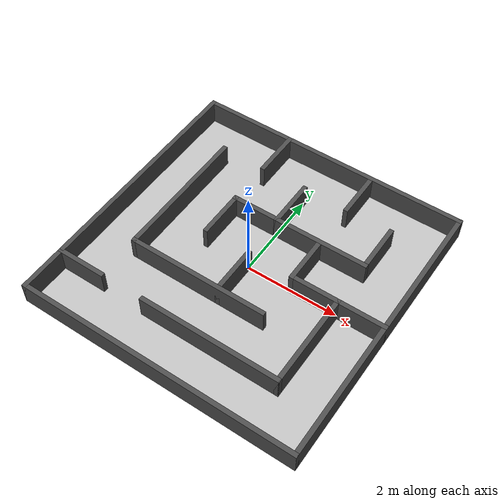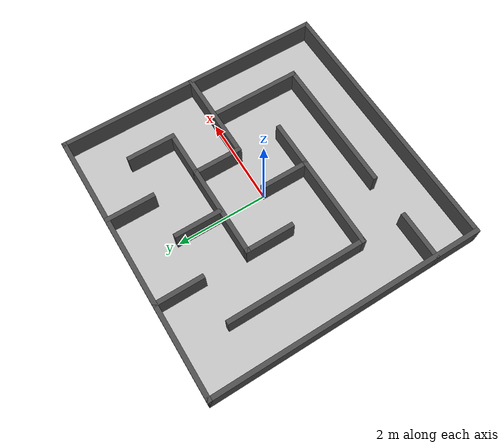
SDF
<?xml version='1.0' encoding='UTF-8'?>
<sdf version="1.6">
  <world name="robot_maze">

    <!-- ================= PHYSICS ================= -->
    <physics name="default_physics" type="ignored">
      <max_step_size>0.001</max_step_size>
      <real_time_factor>1.0</real_time_factor>
    </physics>

    <!-- ================= GAZEBO SYSTEMS ================= -->
    <plugin filename="gz-sim-physics-system" name="gz::sim::systems::Physics"/>

    <plugin filename="gz-sim-user-commands-system" name="gz::sim::systems::UserCommands"/>

    <plugin filename="gz-sim-scene-broadcaster-system" name="gz::sim::systems::SceneBroadcaster"/>

    <plugin filename="gz-sim-sensors-system" name="gz::sim::systems::Sensors">
       <render_engine>ogre2</render_engine>
    </plugin>

    <!-- ================= LIGHTING ================= -->
    <light name="sun" type="directional">
      <pose>0 0 5 0 0 0</pose>
      <cast_shadows>true</cast_shadows>
      <diffuse>0.8 0.8 0.8 1</diffuse>
      <specular>0.2 0.2 0.2 1</specular>
      <direction>-0.5 0.1 -0.9</direction>
    </light>

    <!-- ================= GROUND PLANE ================= -->
    <!-- Centered maze spans x=-3..3 and y=-3..3 -->
    <model name="ground_plane">
      <static>true</static>
      <pose>0 0 -0.05 0 0 0</pose>

      <link name="link">
        <collision name="collision">
          <geometry>
            <box>
              <size>6 6 0.1</size>
            </box>
          </geometry>
        </collision>

        <visual name="visual">
          <geometry>
            <box>
              <size>6 6 0.1</size>
            </box>
          </geometry>
          <material>
            <ambient>0.75 0.75 0.75 1</ambient>
            <diffuse>0.75 0.75 0.75 1</diffuse>
          </material>
        </visual>
      </link>
    </model>

    <!-- ================= MAZE WALLS ================= -->
    <model name="maze">
      <static>true</static>
      <!-- Center the original 0..15 m wall coordinates on the world origin -->
      <pose>-3 -3 0 0 0 0</pose>

      <!-- All walls: height 0.5 m, thickness 0.25 m (scaled proportionally) -->

      <!-- OUTER TOP WALL -->
      <link name="outer_top">
        <pose>3 6 0.25 0 0 0</pose>
        <collision name="collision">
          <geometry>
            <box><size>6.1 0.1 0.5</size></box>
          </geometry>
        </collision>
        <visual name="visual">
          <geometry>
            <box><size>6.1 0.1 0.5</size></box>
          </geometry>
          <material>
            <ambient>0.2 0.2 0.2 1</ambient>
            <diffuse>0.3 0.3 0.3 1</diffuse>
          </material>
        </visual>
      </link>

      <!-- OUTER BOTTOM WALL -->
      <link name="outer_bottom">
        <pose>3 0 0.25 0 0 0</pose>
        <collision name="collision">
          <geometry>
            <box><size>6.1 0.1 0.5</size></box>
          </geometry>
        </collision>
        <visual name="visual">
          <geometry>
            <box><size>6.1 0.1 0.5</size></box>
          </geometry>
          <material>
            <ambient>0.2 0.2 0.2 1</ambient>
            <diffuse>0.3 0.3 0.3 1</diffuse>
          </material>
        </visual>
      </link>

      <!-- OUTER LEFT WALL -->
      <link name="outer_left">
        <pose>0 3 0.25 0 0 0</pose>
        <collision name="collision">
          <geometry>
            <box><size>0.1 6.1 0.5</size></box>
          </geometry>
        </collision>
        <visual name="visual">
          <geometry>
            <box><size>0.1 6.1 0.5</size></box>
          </geometry>
          <material>
            <ambient>0.2 0.2 0.2 1</ambient>
            <diffuse>0.3 0.3 0.3 1</diffuse>
          </material>
        </visual>
      </link>

      <!-- OUTER RIGHT WALL -->
      <link name="outer_right">
        <pose>6 3 0.25 0 0 0</pose>
        <collision name="collision">
          <geometry>
            <box><size>0.1 6.1 0.5</size></box>
          </geometry>
        </collision>
        <visual name="visual">
          <geometry>
            <box><size>0.1 6.1 0.5</size></box>
          </geometry>
          <material>
            <ambient>0.2 0.2 0.2 1</ambient>
            <diffuse>0.3 0.3 0.3 1</diffuse>
          </material>
        </visual>
      </link>

      <!-- ========== INTERIOR VERTICAL WALLS ========== -->

      <link name="v1">
        <pose>2 5.5 0.25 0 0 0</pose>
        <collision name="collision">
          <geometry><box><size>0.1 1.1 0.5</size></box></geometry>
        </collision>
        <visual name="visual">
          <geometry><box><size>0.1 1.1 0.5</size></box></geometry>
          <material><ambient>0.2 0.2 0.2 1</ambient><diffuse>0.3 0.3 0.3 1</diffuse></material>
        </visual>
      </link>

      <link name="v2">
        <pose>4 5.5 0.25 0 0 0</pose>
        <collision name="collision">
          <geometry><box><size>0.1 1.1 0.5</size></box></geometry>
        </collision>
        <visual name="visual">
          <geometry><box><size>0.1 1.1 0.5</size></box></geometry>
          <material><ambient>0.2 0.2 0.2 1</ambient><diffuse>0.3 0.3 0.3 1</diffuse></material>
        </visual>
      </link>

      <link name="v3">
        <pose>1 3.5 0.25 0 0 0</pose>
        <collision name="collision">
          <geometry><box><size>0.1 3.1 0.5</size></box></geometry>
        </collision>
        <visual name="visual">
          <geometry><box><size>0.1 3.1 0.5</size></box></geometry>
          <material><ambient>0.2 0.2 0.2 1</ambient><diffuse>0.3 0.3 0.3 1</diffuse></material>
        </visual>
      </link>

      <link name="v4">
        <pose>3 4.5 0.25 0 0 0</pose>
        <collision name="collision">
          <geometry><box><size>0.1 1.1 0.5</size></box></geometry>
        </collision>
        <visual name="visual">
          <geometry><box><size>0.1 1.1 0.5</size></box></geometry>
          <material><ambient>0.2 0.2 0.2 1</ambient><diffuse>0.3 0.3 0.3 1</diffuse></material>
        </visual>
      </link>

      <link name="v5">
        <pose>5 4.5 0.25 0 0 0</pose>
        <collision name="collision">
          <geometry><box><size>0.1 1.1 0.5</size></box></geometry>
        </collision>
        <visual name="visual">
          <geometry><box><size>0.1 1.1 0.5</size></box></geometry>
          <material><ambient>0.2 0.2 0.2 1</ambient><diffuse>0.3 0.3 0.3 1</diffuse></material>
        </visual>
      </link>

      <link name="v6">
        <pose>2 3.5 0.25 0 0 0</pose>
        <collision name="collision">
          <geometry><box><size>0.1 1.1 0.5</size></box></geometry>
        </collision>
        <visual name="visual">
          <geometry><box><size>0.1 1.1 0.5</size></box></geometry>
          <material><ambient>0.2 0.2 0.2 1</ambient><diffuse>0.3 0.3 0.3 1</diffuse></material>
        </visual>
      </link>

      <link name="v7">
        <pose>4 3.5 0.25 0 0 0</pose>
        <collision name="collision">
          <geometry><box><size>0.1 1.1 0.5</size></box></geometry>
        </collision>
        <visual name="visual">
          <geometry><box><size>0.1 1.1 0.5</size></box></geometry>
          <material><ambient>0.2 0.2 0.2 1</ambient><diffuse>0.3 0.3 0.3 1</diffuse></material>
        </visual>
      </link>

      <link name="v8">
        <pose>3 2.5 0.25 0 0 0</pose>
        <collision name="collision">
          <geometry><box><size>0.1 1.1 0.5</size></box></geometry>
        </collision>
        <visual name="visual">
          <geometry><box><size>0.1 1.1 0.5</size></box></geometry>
          <material><ambient>0.2 0.2 0.2 1</ambient><diffuse>0.3 0.3 0.3 1</diffuse></material>
        </visual>
      </link>

      <link name="v9">
        <pose>5 2 0.25 0 0 0</pose>
        <collision name="collision">
          <geometry><box><size>0.1 2.1 0.5</size></box></geometry>
        </collision>
        <visual name="visual">
          <geometry><box><size>0.1 2.1 0.5</size></box></geometry>
          <material><ambient>0.2 0.2 0.2 1</ambient><diffuse>0.3 0.3 0.3 1</diffuse></material>
        </visual>
      </link>

      <!-- ========== INTERIOR HORIZONTAL WALLS ========== -->

      <link name="h1">
        <pose>3.5 4 0.25 0 0 0</pose>
        <collision name="collision">
          <geometry><box><size>3.1 0.1 0.5</size></box></geometry>
        </collision>
        <visual name="visual">
          <geometry><box><size>3.1 0.1 0.5</size></box></geometry>
          <material><ambient>0.2 0.2 0.2 1</ambient><diffuse>0.3 0.3 0.3 1</diffuse></material>
        </visual>
      </link>

      <link name="h2">
        <pose>5 3 0.25 0 0 0</pose>
        <collision name="collision">
          <geometry><box><size>2.1 0.1 0.5</size></box></geometry>
        </collision>
        <visual name="visual">
          <geometry><box><size>2.1 0.1 0.5</size></box></geometry>
          <material><ambient>0.2 0.2 0.2 1</ambient><diffuse>0.3 0.3 0.3 1</diffuse></material>
        </visual>
      </link>

      <link name="h3">
        <pose>2.5 2 0.25 0 0 0</pose>
        <collision name="collision">
          <geometry><box><size>3.1 0.1 0.5</size></box></geometry>
        </collision>
        <visual name="visual">
          <geometry><box><size>3.1 0.1 0.5</size></box></geometry>
          <material><ambient>0.2 0.2 0.2 1</ambient><diffuse>0.3 0.3 0.3 1</diffuse></material>
        </visual>
      </link>

      <link name="h4">
        <pose>0.5 1 0.25 0 0 0</pose>
        <collision name="collision">
          <geometry><box><size>1.1 0.1 0.5</size></box></geometry>
        </collision>
        <visual name="visual">
          <geometry><box><size>1.1 0.1 0.5</size></box></geometry>
          <material><ambient>0.2 0.2 0.2 1</ambient><diffuse>0.3 0.3 0.3 1</diffuse></material>
        </visual>
      </link>

      <link name="h5">
        <pose>3.5 1 0.25 0 0 0</pose>
        <collision name="collision">
          <geometry><box><size>3.1 0.1 0.5</size></box></geometry>
        </collision>
        <visual name="visual">
          <geometry><box><size>3.1 0.1 0.5</size></box></geometry>
          <material><ambient>0.2 0.2 0.2 1</ambient><diffuse>0.3 0.3 0.3 1</diffuse></material>
        </visual>
      </link>

    </model>

    <!-- ================= CAMERA VIEW ================= -->
    <gui>
      <camera name="top_view">
        <pose>0 0 12 0 1.5708 0</pose>
      </camera>
    </gui>

  </world>
</sdf>
